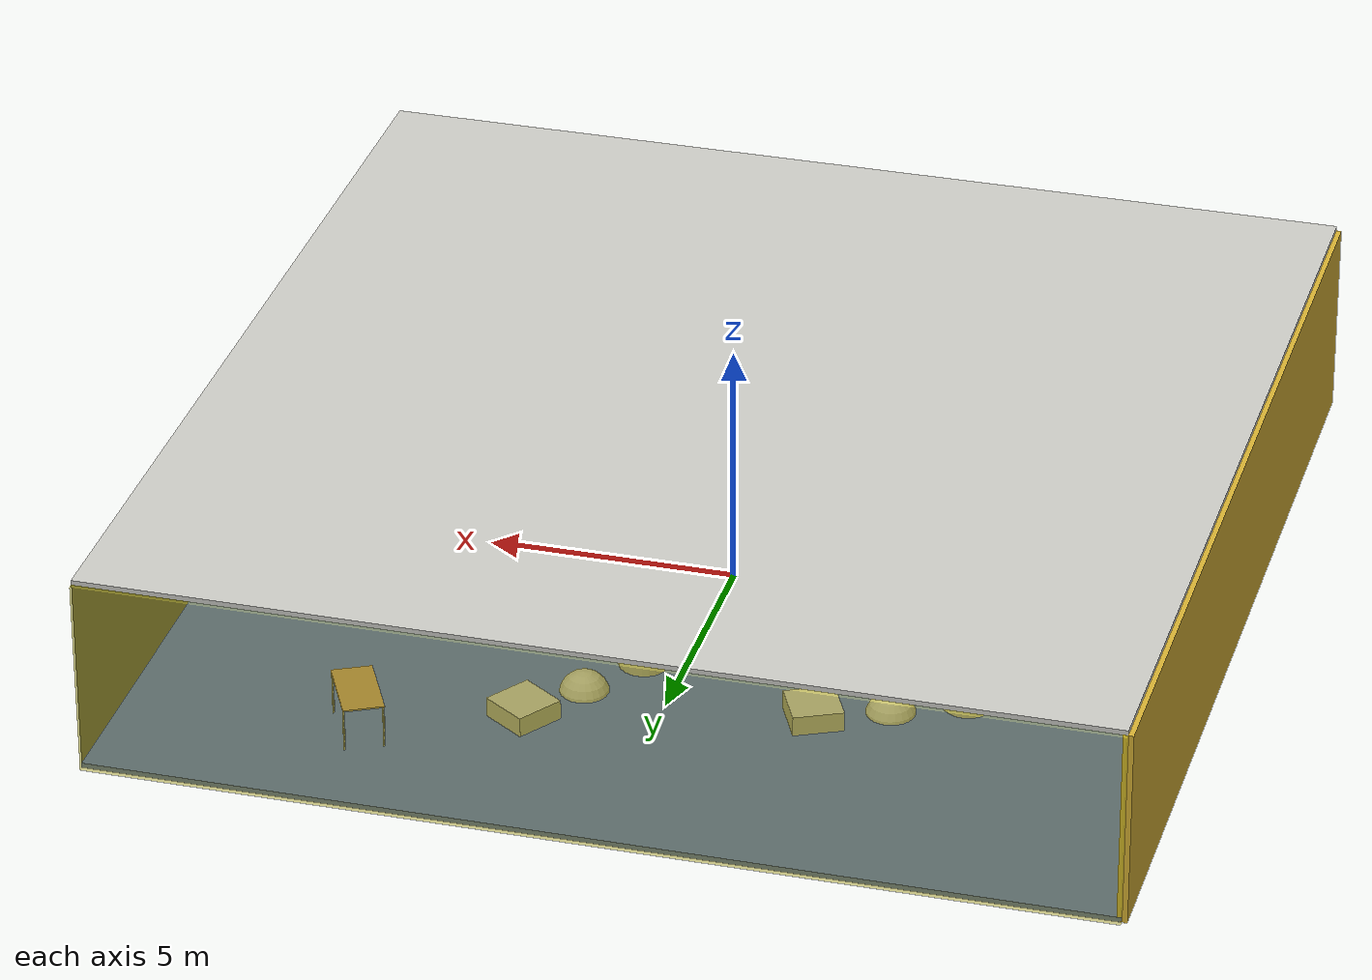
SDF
<sdf version="1.4">
 <world name="default">
  <physics type="ode">
   <max_step_size>0.001</max_step_size>
   <real_time_factor>1</real_time_factor>
   <real_time_update_rate>1000</real_time_update_rate>
   <gravity>0 0 -9.8</gravity>
  </physics>
  <scene><ambient>0.4 0.4 0.4 1</ambient><background>0.7 0.7 0.7 1</background><shadows>1</shadows></scene>
  <model name="Surrounding">
   <static>1</static>
   <link name="Ceiling">
    <collision name="Ceiling_Collision"><geometry><box><size>20 20 0.1</size></box></geometry></collision>
    <visual name="Ceiling_Visual">
     <geometry><box><size>20 20 0.1</size></box></geometry>
     <material>
      <script><uri>file://media/materials/scripts/gazebo.material</uri><name>Gazebo/CeilingTiled</name></script>
     </material>
    </visual>
    <pose>0 0 4.05 0 0 0</pose>
   </link>
   <link name="Wall_South">
    <collision name="Wall_South_Collision">
     <geometry><box><size>20 0 4</size></box></geometry>
     <pose>0 0 2 0 -0 0</pose>
    </collision>
    <visual name="Wall_South_Visual">
     <pose>0 0 2 0 -0 0</pose>
     <geometry><box><size>20 0 4</size></box></geometry>
     <material>
      <script><uri>file://media/materials/scripts/gazebo.material</uri><name>Gazebo/BlueLaser</name></script>
     </material>
    </visual>
    <velocity_decay><linear>0</linear><angular>0</angular></velocity_decay>
    <pose>0 -10 0 0 -0 0</pose>
   </link>
   <link name="Wall_East">
    <collision name="Wall_21_Collision">
     <geometry><box><size>20 0 4</size></box></geometry>
     <pose>0 0 2 0 -0 0</pose>
    </collision>
    <visual name="Wall_21_Visual">
     <pose>0 0 2 0 -0 0</pose>
     <geometry><box><size>20 0 4</size></box></geometry>
     <material>
      <script><uri>file://media/materials/scripts/gazebo.material</uri><name>Gazebo/Road</name></script>
     </material>
    </visual>
    <velocity_decay><linear>0</linear><angular>0</angular></velocity_decay>
    <pose>10 0 0 0 -0 1.5708</pose>
   </link>
   <link name="Wall_North">
    <collision name="Wall_22_Collision">
     <geometry><box><size>20 0.2 4</size></box></geometry>
     <pose>0 0 2 0 -0 0</pose>
    </collision>
    <visual name="Wall_22_Visual">
     <pose>0 0 2 0 -0 0</pose>
     <geometry><box><size>20 0.2 4</size></box></geometry>
     <material>
      <script>
       <uri>file://media/materials/scripts/gazebo.material</uri>
       <name>Gazebo/YellowTransparent</name>
      </script>
     </material>
    </visual>
    <velocity_decay><linear>0</linear><angular>0</angular></velocity_decay>
    <pose>0 10 0 0 -0 0</pose>
   </link>
   <link name="Wall_West">
    <collision name="Wall_23_Collision">
     <geometry><box><size>20 0.2 4</size></box></geometry>
     <pose>0 0 2 0 -0 0</pose>
    </collision>
    <visual name="Wall_23_Visual">
     <pose>0 0 2 0 -0 0</pose>
     <geometry><box><size>20 0.2 4</size></box></geometry>
     <material>
      <script><uri>file://media/materials/scripts/gazebo.material</uri><name>Gazebo/Gold</name></script>
     </material>
    </visual>
    <velocity_decay><linear>0</linear><angular>0</angular></velocity_decay>
    <pose>-10 0 0 0 0 -1.5708</pose>
   </link>
   <link name="Ground_link">
    <collision name="collision">
     <pose>0 0 .05 0 -0 0</pose>
     <geometry><box><size>20 20 0.1</size></box></geometry>
    </collision>
    <visual name="visual">
     <pose>0 0 .05 0 -0 0</pose>
     <geometry><box><size>20 20 0.1</size></box></geometry>
     <material>
      <script><uri>file://media/materials/scripts/gazebo.material</uri><name>Gazebo/BlueLaser</name></script>
     </material>
    </visual>
   </link>
   <static>1</static>
  </model>
  <spherical_coordinates>
   <surface_model>EARTH_WGS84</surface_model>
   <latitude_deg>0</latitude_deg>
   <longitude_deg>0</longitude_deg>
   <elevation>0</elevation>
   <heading_deg>0</heading_deg>
  </spherical_coordinates>
  <light name="lightball_0" type="diffuse">
   <diffuse>0.8 0.8 0.8 1</diffuse>
   <specular>0.2 0.2 0.2 1</specular>
   <attenuation>
    <range>100</range>
    <constant>0.7</constant>
    <linear>0.01</linear>
    <quadratic>0.001</quadratic>
   </attenuation>
   <direction>-0.5 0.1 -0.9</direction>
   <pose>7.94543396013 8.16589617229 1.17951681472 0 0 0</pose>
  </light>
  <light name="lightball_1" type="diffuse">
   <diffuse>0.8 0.8 0.8 1</diffuse>
   <specular>0.2 0.2 0.2 1</specular>
   <attenuation>
    <range>100</range>
    <constant>0.7</constant>
    <linear>0.01</linear>
    <quadratic>0.001</quadratic>
   </attenuation>
   <direction>-0.5 0.1 -0.9</direction>
   <pose>-0.245263624992 8.02743132659 2.27045082585 0 0 0</pose>
  </light>
  <light name="lightball_2" type="diffuse">
   <diffuse>0.8 0.8 0.8 1</diffuse>
   <specular>0.2 0.2 0.2 1</specular>
   <attenuation>
    <range>100</range>
    <constant>0.7</constant>
    <linear>0.01</linear>
    <quadratic>0.001</quadratic>
   </attenuation>
   <direction>-0.5 0.1 -0.9</direction>
   <pose>-9.67068230683 5.1960046518 0.746031507815 0 0 0</pose>
  </light>
  <light name="lightball_3" type="diffuse">
   <diffuse>0.8 0.8 0.8 1</diffuse>
   <specular>0.2 0.2 0.2 1</specular>
   <attenuation>
    <range>100</range>
    <constant>0.7</constant>
    <linear>0.01</linear>
    <quadratic>0.001</quadratic>
   </attenuation>
   <direction>-0.5 0.1 -0.9</direction>
   <pose>3.63948069949 -8.27296347473 0.501927823648 0 0 0</pose>
  </light>
  <light name="lightball_4" type="diffuse">
   <diffuse>0.8 0.8 0.8 1</diffuse>
   <specular>0.2 0.2 0.2 1</specular>
   <attenuation>
    <range>100</range>
    <constant>0.7</constant>
    <linear>0.01</linear>
    <quadratic>0.001</quadratic>
   </attenuation>
   <direction>-0.5 0.1 -0.9</direction>
   <pose>9.9923886238 -2.30075673811 0.604945532834 0 0 0</pose>
  </light>
  <light name="lightball_5" type="diffuse">
   <diffuse>0.8 0.8 0.8 1</diffuse>
   <specular>0.2 0.2 0.2 1</specular>
   <attenuation>
    <range>100</range>
    <constant>0.7</constant>
    <linear>0.01</linear>
    <quadratic>0.001</quadratic>
   </attenuation>
   <direction>-0.5 0.1 -0.9</direction>
   <pose>7.25499421059 2.29336744906 2.75906990986 0 0 0</pose>
  </light>
  <light name="lightball_6" type="diffuse">
   <diffuse>0.8 0.8 0.8 1</diffuse>
   <specular>0.2 0.2 0.2 1</specular>
   <attenuation>
    <range>100</range>
    <constant>0.7</constant>
    <linear>0.01</linear>
    <quadratic>0.001</quadratic>
   </attenuation>
   <direction>-0.5 0.1 -0.9</direction>
   <pose>1.27504736819 1.83454186455 3.04454206624 0 0 0</pose>
  </light>
  <light name="lightball_7" type="diffuse">
   <diffuse>0.8 0.8 0.8 1</diffuse>
   <specular>0.2 0.2 0.2 1</specular>
   <attenuation>
    <range>100</range>
    <constant>0.7</constant>
    <linear>0.01</linear>
    <quadratic>0.001</quadratic>
   </attenuation>
   <direction>-0.5 0.1 -0.9</direction>
   <pose>-2.43752539625 -9.42716801191 2.15931788574 0 0 0</pose>
  </light>
  <light name="lightball_8" type="diffuse">
   <diffuse>0.8 0.8 0.8 1</diffuse>
   <specular>0.2 0.2 0.2 1</specular>
   <attenuation>
    <range>100</range>
    <constant>0.7</constant>
    <linear>0.01</linear>
    <quadratic>0.001</quadratic>
   </attenuation>
   <direction>-0.5 0.1 -0.9</direction>
   <pose>2.29627534144 4.06180150476 1.81312366863 0 0 0</pose>
  </light>
  <light name="lightball_9" type="diffuse">
   <diffuse>0.8 0.8 0.8 1</diffuse>
   <specular>0.2 0.2 0.2 1</specular>
   <attenuation>
    <range>100</range>
    <constant>0.7</constant>
    <linear>0.01</linear>
    <quadratic>0.001</quadratic>
   </attenuation>
   <direction>-0.5 0.1 -0.9</direction>
   <pose>0.09137587624 -9.49914539995 2.65313032401 0 0 0</pose>
  </light>
  <light name="lightball_10" type="diffuse">
   <diffuse>0.8 0.8 0.8 1</diffuse>
   <specular>0.2 0.2 0.2 1</specular>
   <attenuation>
    <range>100</range>
    <constant>0.7</constant>
    <linear>0.01</linear>
    <quadratic>0.001</quadratic>
   </attenuation>
   <direction>-0.5 0.1 -0.9</direction>
   <pose>9.98234017541 9.2065536359 2.8413517985 0 0 0</pose>
  </light>
  <include>
   <uri>model://robocup_3Dsim_goal</uri>
   <pose>-3.36937546862 -7.66222767679 0 0 0 2.21838354923</pose>
  </include>
  <include>
   <uri>model://textured_shapes</uri>
   <pose>-4.2511709605 4.26365177053 0 0 0 2.01608075614</pose>
  </include>
  <include><uri>model://cabinet</uri><pose>-0.766797909301 -2.0722092673 0 0 0 0.706432249979</pose></include>
  <include>
   <uri>model://textured_shapes</uri>
   <pose>-0.821006102757 1.86807683347 0 0 0 1.50401350284</pose>
  </include>
  <include>
   <uri>model://robocup_3Dsim_goal</uri>
   <pose>0.415738614524 -8.2958062323 0 0 0 2.61250866244</pose>
  </include>
  <include>
   <uri>model://textured_shapes</uri>
   <pose>1.52437059048 -4.9949825726 0 0 0 0.283031134098</pose>
  </include>
  <include>
   <uri>model://textured_shapes</uri>
   <pose>1.60477018576 5.02458285245 0 0 0 2.5489571142</pose>
  </include>
  <include><uri>model://table</uri><pose>5.3368340741 7.49331099616 0 0 0 2.04042359354</pose></include>
 </world>
</sdf>

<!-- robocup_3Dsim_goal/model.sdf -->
<sdf version="1.5">
  <model name="robocup_3d_goal">
    <static>true</static>
    <link name="left_post">
      <pose>0 1.05 0.45 0 0 0</pose>
      <collision name="collision">
        <geometry>
          <cylinder>
            <radius>0.05</radius>
            <length>0.9</length>
          </cylinder>
        </geometry>
      </collision>
      <visual name="visual">
        <geometry>
          <cylinder>
            <radius>0.05</radius>
            <length>0.9</length>
          </cylinder>
        </geometry>
        <material>
          <script>
            <uri>file://media/materials/scripts/gazebo.material</uri>
            <name>Gazebo/ZincYellow</name>
          </script>
        </material>
      </visual>
    </link>
    <link name="left_support_horiz_lower">
      <pose>0.30 1.05 0.01 0 0 0</pose>
      <collision name="collision">
        <geometry>
          <box>
            <size>0.50 0.02 0.02</size>
          </box>
        </geometry>
      </collision>
      <visual name="visual">
        <geometry>
          <box>
            <size>0.50 0.02 0.02</size>
          </box>
        </geometry>
        <material>
          <script>
            <uri>file://media/materials/scripts/gazebo.material</uri>
            <name>Gazebo/White</name>
          </script>
        </material>
      </visual>
    </link>
    <link name="left_support_horiz_upper">
      <pose>0.30 1.05 0.79 0 0 0</pose>
      <collision name="collision">
        <geometry>
          <box>
            <size>0.50 0.02 0.02</size>
          </box>
        </geometry>
      </collision>
      <visual name="visual">
        <geometry>
          <box>
            <size>0.50 0.02 0.02</size>
          </box>
        </geometry>
        <material>
          <script>
            <uri>file://media/materials/scripts/gazebo.material</uri>
            <name>Gazebo/White</name>
          </script>
        </material>
      </visual>
    </link>
    <link name="left_support_vertical">
      <pose>0.56 1.05 0.4 0 1.5708 0</pose>
      <collision name="collision">
        <geometry>
          <box>
            <size>0.80 0.02 0.02</size>
          </box>
        </geometry>
      </collision>
      <visual name="visual">
        <geometry>
          <box>
            <size>0.80 0.02 0.02</size>
          </box>
        </geometry>
        <material>
          <script>
            <uri>file://media/materials/scripts/gazebo.material</uri>
            <name>Gazebo/White</name>
          </script>
        </material>
      </visual>
    </link>
    <link name="right_support_horiz_lower">
      <pose>0.30 -1.05 0.01 0 0 0</pose>
      <collision name="collision">
        <geometry>
          <box>
            <size>0.50 0.02 0.02</size>
          </box>
        </geometry>
      </collision>
      <visual name="visual">
        <geometry>
          <box>
            <size>0.50 0.02 0.02</size>
          </box>
        </geometry>
        <material>
          <script>
            <uri>file://media/materials/scripts/gazebo.material</uri>
            <name>Gazebo/White</name>
          </script>
        </material>
      </visual>
    </link>
    <link name="right_support_horiz_upper">
      <pose>0.30 -1.05 0.79 0 0 0</pose>
      <collision name="collision">
        <geometry>
          <box>
            <size>0.50 0.02 0.02</size>
          </box>
        </geometry>
      </collision>
      <visual name="visual">
        <geometry>
          <box>
            <size>0.50 0.02 0.02</size>
          </box>
        </geometry>
        <material>
          <script>
            <uri>file://media/materials/scripts/gazebo.material</uri>
            <name>Gazebo/White</name>
          </script>
        </material>
      </visual>
    </link>
    <link name="right_support_vertical">
      <pose>0.56 -1.05 0.4 0 1.5708 0</pose>
      <collision name="collision">
        <geometry>
          <box>
            <size>0.80 0.02 0.02</size>
          </box>
        </geometry>
      </collision>
      <visual name="visual">
        <geometry>
          <box>
            <size>0.80 0.02 0.02</size>
          </box>
        </geometry>
        <material>
          <script>
            <uri>file://media/materials/scripts/gazebo.material</uri>
            <name>Gazebo/White</name>
          </script>
        </material>
      </visual>
    </link>
    <link name="center_support_horiz_lower">
      <pose>0.56 0 0.01 0 1.5708 0</pose>
      <collision name="collision">
        <geometry>
          <box>
            <size>0.02 2.08 0.02</size>
          </box>
        </geometry>
      </collision>
      <visual name="visual">
        <geometry>
          <box>
            <size>0.02 2.08 0.02</size>
          </box>
        </geometry>
        <material>
          <script>
            <uri>file://media/materials/scripts/gazebo.material</uri>
            <name>Gazebo/White</name>
          </script>
        </material>
      </visual>
    </link>
    <link name="center_support_horiz_upper">
      <pose>0.56 0 0.79 0 1.5708 0</pose>
      <collision name="collision">
        <geometry>
          <box>
            <size>0.02 2.08 0.02</size>
          </box>
        </geometry>
      </collision>
      <visual name="visual">
        <geometry>
          <box>
            <size>0.02 2.08 0.02</size>
          </box>
        </geometry>
        <material>
          <script>
            <uri>file://media/materials/scripts/gazebo.material</uri>
            <name>Gazebo/White</name>
          </script>
        </material>
      </visual>
    </link>
    <link name="right_post">
      <pose>0 -1.05 0.45 0 0 0</pose>
      <collision name="collision">
        <geometry>
          <cylinder>
            <radius>0.05</radius>
            <length>0.9</length>
          </cylinder>
        </geometry>
      </collision>
      <visual name="visual">
        <geometry>
          <cylinder>
            <radius>0.05</radius>
            <length>0.9</length>
          </cylinder>
        </geometry>
        <material>
          <script>
            <uri>file://media/materials/scripts/gazebo.material</uri>
            <name>Gazebo/ZincYellow</name>
          </script>
        </material>
      </visual>
    </link>
    <link name="crossbar">
      <pose>0 0 0.85 1.57 1.57 0</pose>
      <collision name="collision">
        <geometry>
          <cylinder>
            <radius>0.05</radius>
            <length>2.0</length>
          </cylinder>
        </geometry>
      </collision>
      <visual name="visual">
        <geometry>
          <cylinder>
            <radius>0.05</radius>
            <length>2.0</length>
          </cylinder>
        </geometry>
        <material>
          <script>
            <uri>file://media/materials/scripts/gazebo.material</uri>
            <name>Gazebo/ZincYellow</name>
          </script>
        </material>
      </visual>
    </link>
    <link name="center_net">
      <pose>0.56 0 0.40 0 0 0</pose>
      <collision name="collision">
        <geometry>
          <box>
            <size>0.01 2.1 0.80</size>
          </box>
        </geometry>
      </collision>
      <visual name="visual">
        <geometry>
          <box>
            <size>0.01 2.1 0.80</size>
          </box>
        </geometry>
        <material>
          <script>
            <uri>model://../model_source/models/robocup09_spl_field/materials/scripts/</uri>
            <uri>model://../model_source/models/robocup09_spl_field/materials/textures/</uri>
            <name>RoboCup/Net</name>
          </script>
        </material>
      </visual>
    </link>
    <link name="left_net">
      <pose>0.30 1.05 0.40 0 0 0</pose>
      <collision name="collision">
        <geometry>
          <box>
            <size>0.50 0.01 0.76</size>
          </box>
        </geometry>
      </collision>
      <visual name="visual">
        <geometry>
          <box>
            <size>0.50 0.01 0.76</size>
          </box>
        </geometry>
        <material>
          <script>
            <uri>model://../model_source/models/robocup09_spl_field/materials/scripts/</uri>
            <uri>model://../model_source/models/robocup09_spl_field/materials/textures/</uri>
            <name>RoboCup/Net</name>
          </script>
        </material>
      </visual>
    </link>
    <link name="right_net">
      <pose>0.30 -1.05 0.40 0 0 0</pose>
      <collision name="collision">
        <geometry>
          <box>
            <size>0.50 0.01 0.76</size>
          </box>
        </geometry>
      </collision>
      <visual name="visual">
        <geometry>
          <box>
            <size>0.50 0.01 0.76</size>
          </box>
        </geometry>
        <material>
          <script>
            <uri>model://../model_source/models/robocup09_spl_field/materials/scripts/</uri>
            <uri>model://../model_source/models/robocup09_spl_field/materials/textures/</uri>
            <name>RoboCup/Net</name>
          </script>
        </material>
      </visual>
    </link>
  </model>
</sdf>

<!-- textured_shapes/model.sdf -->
<sdf version="1.6">
  <model name="textured_shapes">
    <pose>0 0 0.5 0 0 0</pose>
    <link name="box">
      <pose>0 -1.5 0 0 0 0</pose>
      <collision name="collision">
        <geometry>
          <box>
            <size>1 1 1</size>
          </box>
        </geometry>
      </collision>
      <visual name="visual">
        <geometry>
          <box>
            <size>1 1 1</size>
          </box>
        </geometry>
        <material>
          <script>
            <uri>model://../model_source/models/textured_shapes/materials/scripts</uri>
            <uri>model://../model_source/models/textured_shapes/materials/textures</uri>
            <name>TexturedShape/Squares</name>
          </script>
        </material>
      </visual>
    </link>
    <link name="sphere">
      <collision name="collision">
        <geometry>
          <sphere>
            <radius>0.5</radius>
          </sphere>
        </geometry>
      </collision>
      <visual name="visual">
        <geometry>
          <sphere>
            <radius>0.5</radius>
          </sphere>
        </geometry>
        <material>
          <script>
            <uri>model://../model_source/models/textured_shapes/materials/scripts</uri>
            <uri>model://../model_source/models/textured_shapes/materials/textures</uri>
            <name>TexturedShape/Squares</name>
          </script>
        </material>
      </visual>
    </link>
    <link name="cylinder">
      <pose>0 1.5 0 0 0 0</pose>
      <collision name="collision">
        <geometry>
          <cylinder>
            <radius>0.5</radius>
            <length>1</length>
          </cylinder>
        </geometry>
      </collision>
      <visual name="visual">
        <geometry>
          <cylinder>
            <radius>0.5</radius>
            <length>1</length>
          </cylinder>
        </geometry>
        <material>
          <script>
            <uri>model://../model_source/models/textured_shapes/materials/scripts</uri>
            <uri>model://../model_source/models/textured_shapes/materials/textures</uri>
            <name>TexturedShape/Squares</name>
          </script>
        </material>
      </visual>
    </link>
  </model>
</sdf>

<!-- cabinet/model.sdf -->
<sdf version="1.5">
  <model name="cabinet">
    <static>true</static>
    <link name="cabinet_bottom_plate">
      <inertial>
        <pose>0 0 -1 0 0 0</pose>
        <inertia>
          <ixx>2.050000</ixx>
          <ixy>0</ixy>
          <ixz>0</ixz>
          <iyy>2.050000</iyy>
          <iyz>0</iyz>
          <izz>2.050000</izz>
        </inertia>
        <mass>25.000000</mass>
      </inertial>
      <collision name="cabinet_bottom_plate_geom">
        <pose>0 0 0.010000 0 0 0</pose>
        <geometry>
          <box>
            <size>0.450000 0.450000 0.020000</size>
          </box>
        </geometry>
      </collision>
      <visual name="cabinet_bottom_plate_geom_visual">
        <pose>0 0 0.010000 0 0 0</pose>
        <geometry>
          <box>
            <size>0.450000 0.450000 0.020000</size>
          </box>
        </geometry>
        <material>
          <script>
            <uri>model://media/materials/scripts/gazebo.material</uri>
            <name>Gazebo/Wood</name>
          </script>
        </material>
      </visual>
      <collision name="cabinet_bottom_plate_geom_cabinet_back_plate">
        <pose>0.235000 0 0.510000 0 0 0</pose>
        <geometry>
          <box>
            <size>0.020000 0.450000 1.020000</size>
          </box>
        </geometry>
      </collision>
      <visual name="cabinet_bottom_plate_geom_cabinet_back_plate_visual">
        <pose>0.235000 0 0.510000 0 0 0</pose>
        <geometry>
          <box>
            <size>0.020000 0.450000 1.020000</size>
          </box>
        </geometry>
        <material>
          <script>
            <uri>model://media/materials/scripts/gazebo.material</uri>
            <name>Gazebo/Wood</name>
          </script>
        </material>
      </visual>
      <collision name="cabinet_bottom_plate_geom_cabinet_left_plate">
        <pose>0 0.235000 0.510000 0 0 0</pose>
        <geometry>
          <box>
            <size>0.450000 0.020000 1.020000</size>
          </box>
        </geometry>
      </collision>
      <visual name="cabinet_bottom_plate_geom_cabinet_left_plate_visual">
        <pose>0 0.235000 0.510000 0 0 0</pose>
        <geometry>
          <box>
            <size>0.450000 0.020000 1.020000</size>
          </box>
        </geometry>
        <material>
          <script>
            <uri>model://media/materials/scripts/gazebo.material</uri>
            <name>Gazebo/Wood</name>
          </script>
        </material>
      </visual>
      <collision name="cabinet_bottom_plate_geom_cabinet_middle_plate">
        <pose>0 0 0.510000 0 0 0</pose>
        <geometry>
          <box>
            <size>0.450000 0.450000 0.020000</size>
          </box>
        </geometry>
      </collision>
      <visual name="cabinet_bottom_plate_geom_cabinet_middle_plate_visual">
        <pose>0 0 0.510000 0 0 0</pose>
        <geometry>
          <box>
            <size>0.450000 0.450000 0.020000</size>
          </box>
        </geometry>
        <material>
          <script>
            <uri>model://media/materials/scripts/gazebo.material</uri>
            <name>Gazebo/Wood</name>
          </script>
        </material>
      </visual>
      <collision name="cabinet_bottom_plate_geom_cabinet_right_plate">
        <pose>0 -0.235000 0.510000 0 0 0</pose>
        <geometry>
          <box>
            <size>0.450000 0.020000 1.020000</size>
          </box>
        </geometry>
      </collision>
      <visual name="cabinet_bottom_plate_geom_cabinet_right_plate_visual">
        <pose>0 -0.235000 0.510000 0 0 0</pose>
        <geometry>
          <box>
            <size>0.450000 0.020000 1.020000</size>
          </box>
        </geometry>
        <material>
          <script>
            <uri>model://media/materials/scripts/gazebo.material</uri>
            <name>Gazebo/Wood</name>
          </script>
        </material>
      </visual>
      <collision name="cabinet_bottom_plate_geom_cabinet_top_plate">
        <pose>0 0 1.010000 0 0 0</pose>
        <geometry>
          <box>
            <size>0.450000 0.450000 0.020000</size>
          </box>
        </geometry>
      </collision>
      <visual name="cabinet_bottom_plate_geom_cabinet_top_plate_visual">
        <pose>0 0 1.010000 0 0 0</pose>
        <geometry>
          <box>
            <size>0.450000 0.450000 0.020000</size>
          </box>
        </geometry>
        <material>
          <script>
            <uri>model://media/materials/scripts/gazebo.material</uri>
            <name>Gazebo/Wood</name>
          </script>
        </material>
      </visual>
    </link>
  </model>
</sdf>

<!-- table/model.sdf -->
<sdf version="1.5">
  <model name="table">
    <static>true</static>
    <link name="link">
      <collision name="surface">
        <pose>0 0 1.0 0 0 0</pose>
        <geometry>
          <box>
            <size>1.5 0.8 0.03</size>
          </box>
        </geometry>
        <surface>
          <friction>
            <ode>
              <mu>0.6</mu>
              <mu2>0.6</mu2>
            </ode>
          </friction>
        </surface>
      </collision>
      <visual name="visual1">
        <pose>0 0 1.0 0 0 0</pose>
        <geometry>
          <box>
            <size>1.5 0.8 0.03</size>
          </box>
        </geometry>
        <material>
          <script>
            <uri>model://media/materials/scripts/gazebo.material</uri>
            <name>Gazebo/Wood</name>
          </script>
        </material>
      </visual>
      <collision name="front_left_leg">
        <pose>0.68 0.38 0.5 0 0 0</pose>
        <geometry>
          <cylinder>
            <radius>0.02</radius>
            <length>1.0</length>
          </cylinder>
        </geometry>
      </collision>
      <visual name="front_left_leg">
        <pose>0.68 0.38 0.5 0 0 0</pose>
        <geometry>
          <cylinder>
            <radius>0.02</radius>
            <length>1.0</length>
          </cylinder>
        </geometry>
        <material>
          <script>
            <uri>model://media/materials/scripts/gazebo.material</uri>
            <name>Gazebo/Grey</name>
          </script>
        </material>
      </visual>
      <collision name="front_right_leg">
        <pose>0.68 -0.38 0.5 0 0 0</pose>
        <geometry>
          <cylinder>
            <radius>0.02</radius>
            <length>1.0</length>
          </cylinder>
        </geometry>
      </collision>
      <visual name="front_right_leg">
        <pose>0.68 -0.38 0.5 0 0 0</pose>
        <geometry>
          <cylinder>
            <radius>0.02</radius>
            <length>1.0</length>
          </cylinder>
        </geometry>
        <material>
          <script>
            <uri>model://media/materials/scripts/gazebo.material</uri>
            <name>Gazebo/Grey</name>
          </script>
        </material>
      </visual>
      <collision name="back_right_leg">
        <pose>-0.68 -0.38 0.5 0 0 0</pose>
        <geometry>
          <cylinder>
            <radius>0.02</radius>
            <length>1.0</length>
          </cylinder>
        </geometry>
      </collision>
      <visual name="back_right_leg">
        <pose>-0.68 -0.38 0.5 0 0 0</pose>
        <geometry>
          <cylinder>
            <radius>0.02</radius>
            <length>1.0</length>
          </cylinder>
        </geometry>
        <material>
          <script>
            <uri>model://media/materials/scripts/gazebo.material</uri>
            <name>Gazebo/Grey</name>
          </script>
        </material>
      </visual>
      <collision name="back_left_leg">
        <pose>-0.68 0.38 0.5 0 0 0</pose>
        <geometry>
          <cylinder>
            <radius>0.02</radius>
            <length>1.0</length>
          </cylinder>
        </geometry>
      </collision>
      <visual name="back_left_leg">
        <pose>-0.68 0.38 0.5 0 0 0</pose>
        <geometry>
          <cylinder>
            <radius>0.02</radius>
            <length>1.0</length>
          </cylinder>
        </geometry>
        <material>
          <script>
            <uri>model://media/materials/scripts/gazebo.material</uri>
            <name>Gazebo/Grey</name>
          </script>
        </material>
      </visual>
    </link>
  </model>
</sdf>
